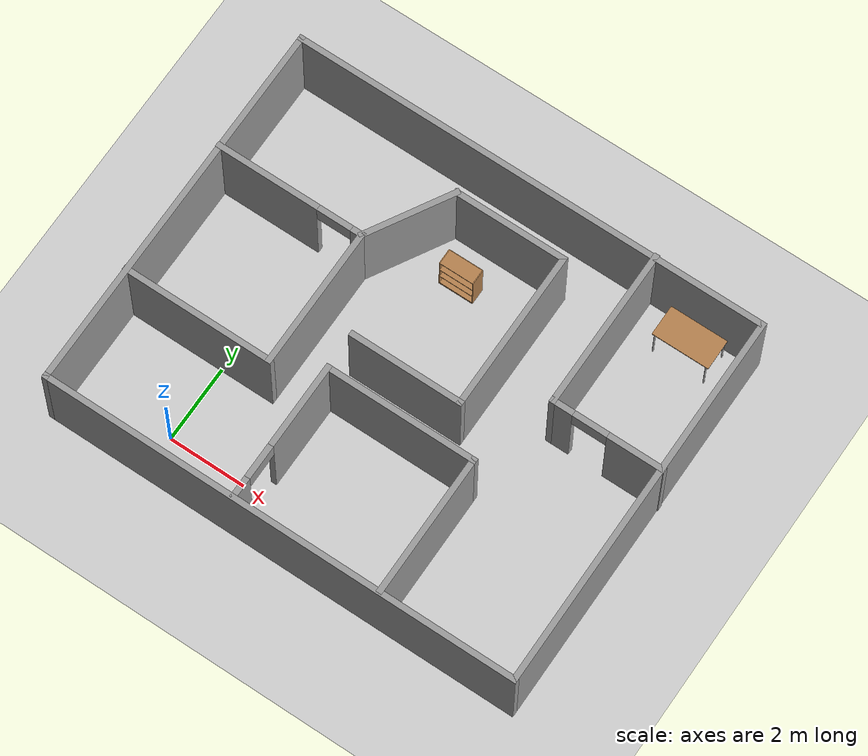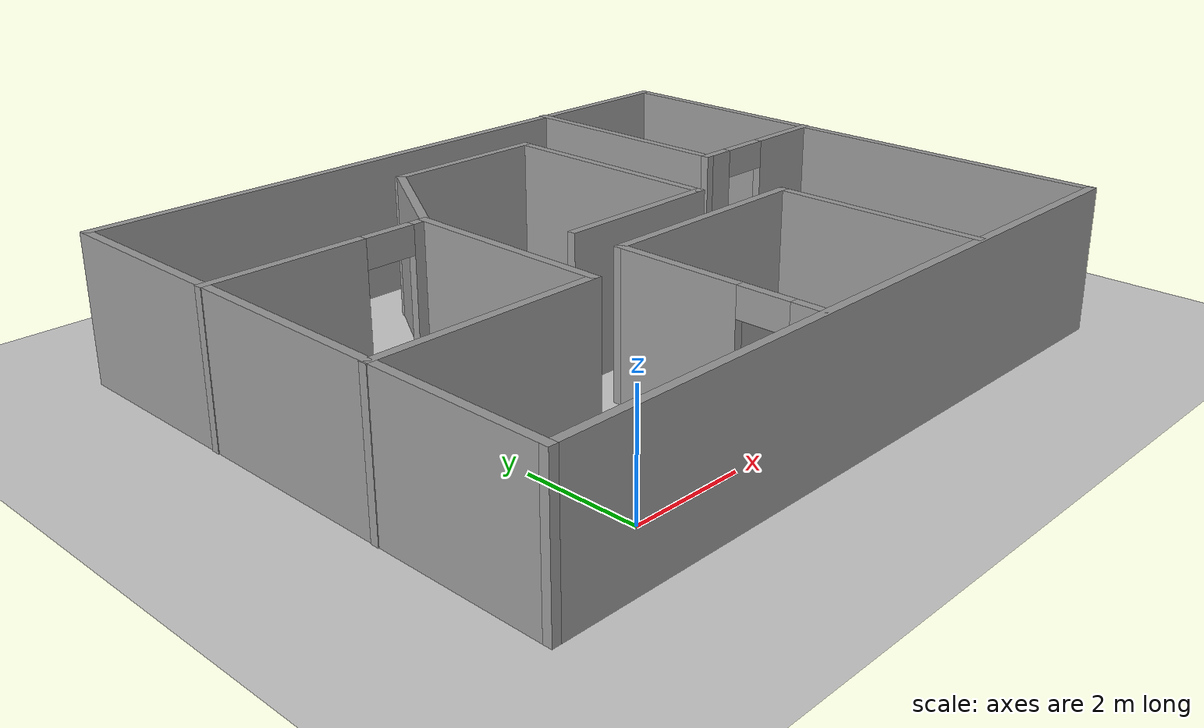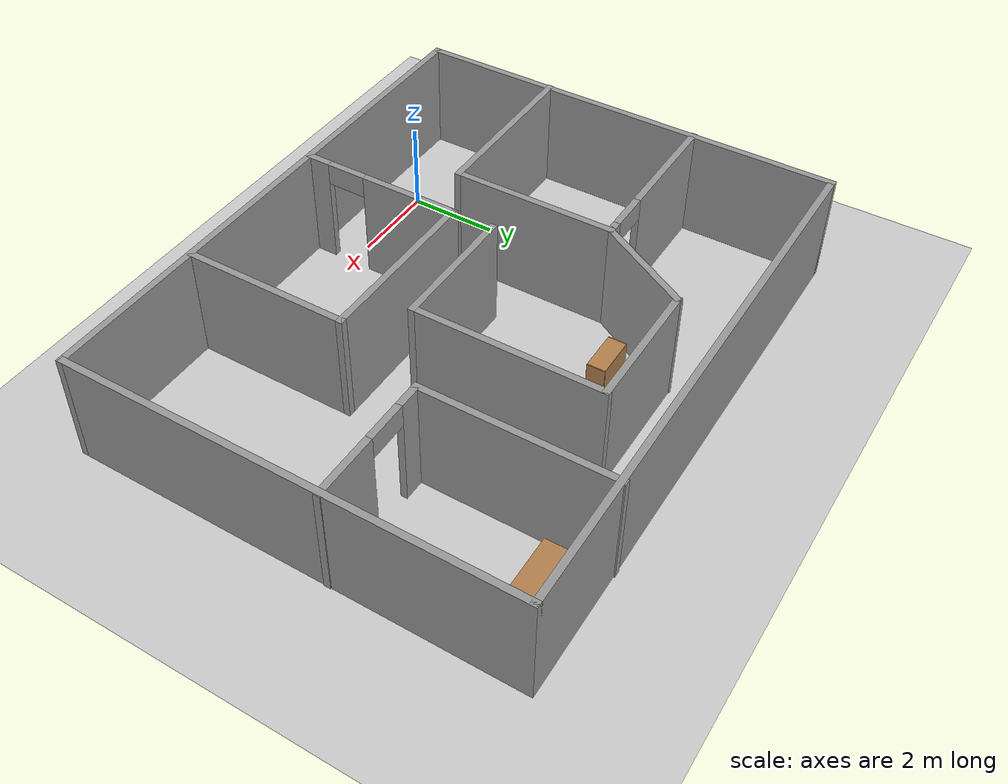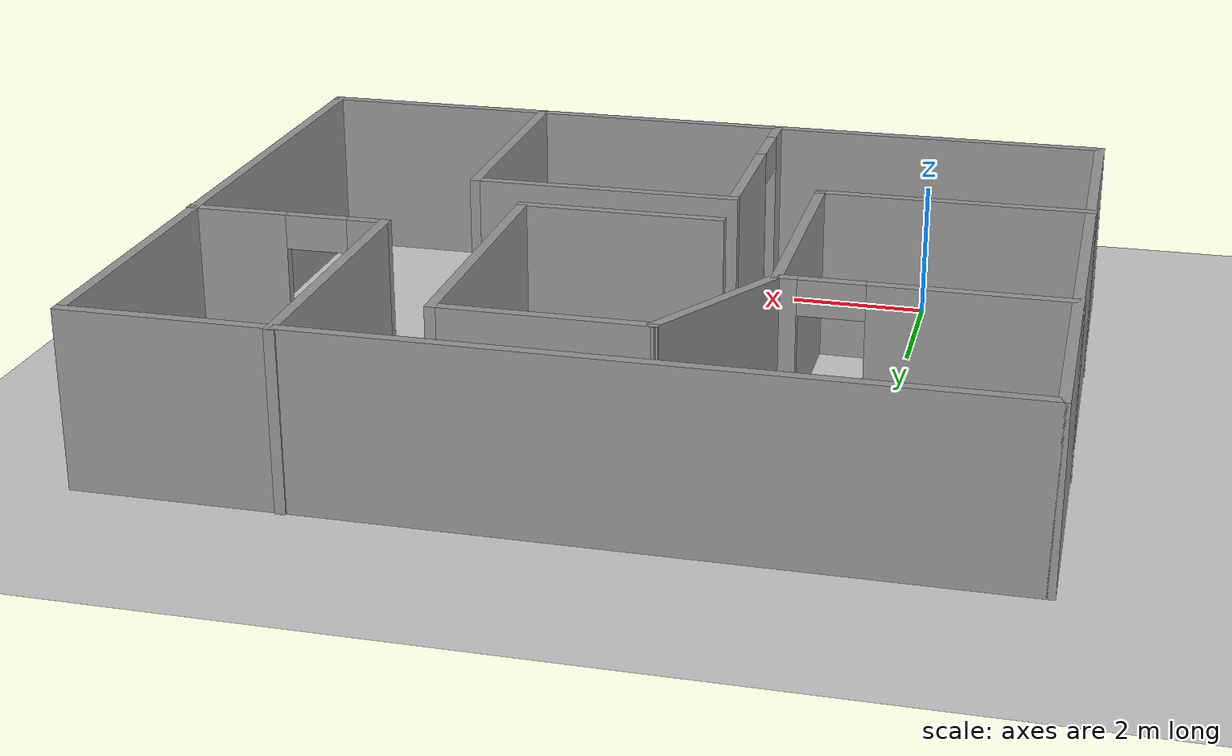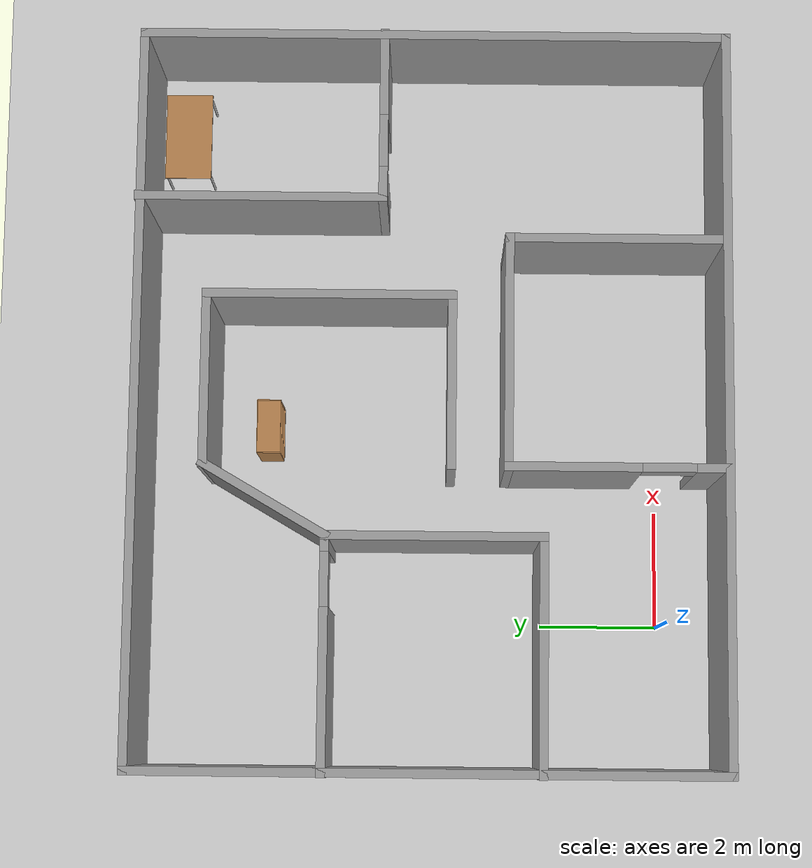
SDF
<sdf version="1.7">
 <world name="default">
  <light name="sun" type="directional">
   <pose>0 0 10 0 -0 0</pose>
   <diffuse>0.8 0.8 0.8 1</diffuse>
   <specular>0.2 0.2 0.2 1</specular>
   <attenuation>
    <range>1000</range>
    <constant>0.9</constant>
    <linear>0.01</linear>
    <quadratic>0.001</quadratic>
   </attenuation>
   <direction>-0.5 0.1 -0.9</direction>
   <spot><inner_angle>0</inner_angle><outer_angle>0</outer_angle><falloff>0</falloff></spot>
  </light>
  <model name="ground_plane">
   <static>1</static>
   <link name="link">
    <collision name="collision">
     <geometry><plane><normal>0 0 1</normal><size>100 100</size></plane></geometry>
     <surface>
      <contact><collide_bitmask>65535</collide_bitmask></contact>
      <friction><ode><mu>100</mu><mu2>50</mu2></ode></friction>
     </surface>
    </collision>
    <visual name="visual">
     <cast_shadows>0</cast_shadows>
     <geometry><plane><normal>0 0 1</normal><size>100 100</size></plane></geometry>
     <material>
      <script><uri>file://media/materials/scripts/gazebo.material</uri><name>Gazebo/Grey</name></script>
     </material>
    </visual>
   </link>
  </model>
  <gravity>0 0 -9.8</gravity>
  <magnetic_field>6e-06 2.3e-05 -4.2e-05</magnetic_field>
  <atmosphere type="adiabatic"/>
  <physics type="ode">
   <max_step_size>0.001</max_step_size>
   <real_time_factor>1</real_time_factor>
   <real_time_update_rate>1000</real_time_update_rate>
  </physics>
  <scene><ambient>0.4 0.4 0.4 1</ambient><background>0.7 0.7 0.7 1</background><shadows>1</shadows></scene>
  <audio><device>default</device></audio>
  <spherical_coordinates>
   <surface_model>EARTH_WGS84</surface_model>
   <latitude_deg>0</latitude_deg>
   <longitude_deg>0</longitude_deg>
   <elevation>0</elevation>
   <heading_deg>0</heading_deg>
  </spherical_coordinates>
  <model name="my_floor3">
   <pose>3.68856 3.92915 0 0 -0 0</pose>
   <link name="Wall_0">
    <collision name="Wall_0_Collision">
     <geometry><box><size>10 0.15 2.5</size></box></geometry>
     <pose>0 0 1.25 0 -0 0</pose>
    </collision>
    <visual name="Wall_0_Visual">
     <pose>0 0 1.25 0 -0 0</pose>
     <geometry><box><size>10 0.15 2.5</size></box></geometry>
     <material>
      <script><uri>file://media/materials/scripts/gazebo.material</uri><name>Gazebo/Grey</name></script>
      <ambient>1 1 1 1</ambient>
     </material>
     <meta><layer>0</layer></meta>
    </visual>
    <pose>-6.17856 -0.01415 0 0 -0 1.5708</pose>
   </link>
   <link name="Wall_1">
    <collision name="Wall_1_Collision">
     <geometry><box><size>12.5 0.15 2.5</size></box></geometry>
     <pose>0 0 1.25 0 -0 0</pose>
    </collision>
    <visual name="Wall_1_Visual">
     <pose>0 0 1.25 0 -0 0</pose>
     <geometry><box><size>12.5 0.15 2.5</size></box></geometry>
     <material>
      <script><uri>file://media/materials/scripts/gazebo.material</uri><name>Gazebo/Grey</name></script>
      <ambient>1 1 1 1</ambient>
     </material>
     <meta><layer>0</layer></meta>
    </visual>
    <pose>-0.00356 4.91085 0 0 -0 0</pose>
   </link>
   <link name="Wall_11">
    <collision name="Wall_11_Collision">
     <geometry><box><size>3.75 0.15 2.5</size></box></geometry>
     <pose>0 0 1.25 0 -0 0</pose>
    </collision>
    <visual name="Wall_11_Visual">
     <pose>0 0 1.25 0 -0 0</pose>
     <geometry><box><size>3.75 0.15 2.5</size></box></geometry>
     <material>
      <script><uri>file://media/materials/scripts/gazebo.material</uri><name>Gazebo/Grey</name></script>
      <ambient>1 1 1 1</ambient>
     </material>
     <meta><layer>0</layer></meta>
    </visual>
    <pose>-2.34146 -0.081381 0 0 -0 -1.5708</pose>
   </link>
   <link name="Wall_12">
    <collision name="Wall_12_Collision">
     <geometry><box><size>4 0.15 2.5</size></box></geometry>
     <pose>0 0 1.25 0 -0 0</pose>
    </collision>
    <visual name="Wall_12_Visual">
     <pose>0 0 1.25 0 -0 0</pose>
     <geometry><box><size>4 0.15 2.5</size></box></geometry>
     <material>
      <script><uri>file://media/materials/scripts/gazebo.material</uri><name>Gazebo/Grey</name></script>
      <ambient>1 1 1 1</ambient>
     </material>
     <meta><layer>0</layer></meta>
    </visual>
    <pose>-4.26646 -1.88138 0 0 -0 3.14159</pose>
   </link>
   <link name="Wall_14">
    <collision name="Wall_14_Collision">
     <geometry><box><size>3.75 0.15 2.5</size></box></geometry>
     <pose>0 0 1.25 0 -0 0</pose>
    </collision>
    <visual name="Wall_14_Visual">
     <pose>0 0 1.25 0 -0 0</pose>
     <geometry><box><size>3.75 0.15 2.5</size></box></geometry>
     <material>
      <script><uri>file://media/materials/scripts/gazebo.material</uri><name>Gazebo/Grey</name></script>
      <ambient>1 1 1 1</ambient>
     </material>
     <meta><layer>0</layer></meta>
    </visual>
    <pose>2.67359 -3.09499 0 0 -0 1.5708</pose>
   </link>
   <link name="Wall_15">
    <collision name="Wall_15_Collision">
     <geometry><box><size>4 0.15 2.5</size></box></geometry>
     <pose>0 0 1.25 0 -0 0</pose>
    </collision>
    <visual name="Wall_15_Visual">
     <pose>0 0 1.25 0 -0 0</pose>
     <geometry><box><size>4 0.15 2.5</size></box></geometry>
     <material>
      <script><uri>file://media/materials/scripts/gazebo.material</uri><name>Gazebo/Grey</name></script>
      <ambient>1 1 1 1</ambient>
     </material>
     <meta><layer>0</layer></meta>
    </visual>
    <pose>0.748586 -1.29499 0 0 -0 3.14159</pose>
   </link>
   <link name="Wall_16">
    <pose>-1.17641 -3.09499 0 0 -0 -1.5708</pose>
    <visual name="Wall_16_Visual_0">
     <pose>-0.737413 0 1.25 0 -0 0</pose>
     <geometry><box><size>2.27517 0.15 2.5</size></box></geometry>
     <material>
      <script><uri>file://media/materials/scripts/gazebo.material</uri><name>Gazebo/Grey</name></script>
      <ambient>1 1 1 1</ambient>
     </material>
     <meta><layer>0</layer></meta>
    </visual>
    <collision name="Wall_16_Collision_0">
     <geometry><box><size>2.27517 0.15 2.5</size></box></geometry>
     <pose>-0.737413 0 1.25 0 -0 0</pose>
    </collision>
    <visual name="Wall_16_Visual_1">
     <pose>1.58759 0 1.25 0 -0 0</pose>
     <geometry><box><size>0.574827 0.15 2.5</size></box></geometry>
     <material>
      <script><uri>file://media/materials/scripts/gazebo.material</uri><name>Gazebo/Grey</name></script>
      <ambient>1 1 1 1</ambient>
     </material>
     <meta><layer>0</layer></meta>
    </visual>
    <collision name="Wall_16_Collision_1">
     <geometry><box><size>0.574827 0.15 2.5</size></box></geometry>
     <pose>1.58759 0 1.25 0 -0 0</pose>
    </collision>
    <visual name="Wall_16_Visual_2">
     <pose>0.850173 0 2.25 0 -0 0</pose>
     <geometry><box><size>0.9 0.15 0.5</size></box></geometry>
     <material>
      <script><uri>file://media/materials/scripts/gazebo.material</uri><name>Gazebo/Grey</name></script>
      <ambient>1 1 1 1</ambient>
     </material>
     <meta><layer>0</layer></meta>
    </visual>
    <collision name="Wall_16_Collision_2">
     <geometry><box><size>0.9 0.15 0.5</size></box></geometry>
     <pose>0.850173 0 2.25 0 -0 0</pose>
    </collision>
   </link>
   <link name="Wall_19">
    <pose>4.76646 0.83915 0 0 -0 3.14159</pose>
    <visual name="Wall_19_Visual_0">
     <pose>-0.755263 0 1.25 0 -0 0</pose>
     <geometry><box><size>1.48947 0.15 2.5</size></box></geometry>
     <material>
      <script><uri>file://media/materials/scripts/gazebo.material</uri><name>Gazebo/Grey</name></script>
      <ambient>1 1 1 1</ambient>
     </material>
     <meta><layer>0</layer></meta>
    </visual>
    <collision name="Wall_19_Collision_0">
     <geometry><box><size>1.48947 0.15 2.5</size></box></geometry>
     <pose>-0.755263 0 1.25 0 -0 0</pose>
    </collision>
    <visual name="Wall_19_Visual_1">
     <pose>1.19474 0 1.25 0 -0 0</pose>
     <geometry><box><size>0.610526 0.15 2.5</size></box></geometry>
     <material>
      <script><uri>file://media/materials/scripts/gazebo.material</uri><name>Gazebo/Grey</name></script>
      <ambient>1 1 1 1</ambient>
     </material>
     <meta><layer>0</layer></meta>
    </visual>
    <collision name="Wall_19_Collision_1">
     <geometry><box><size>0.610526 0.15 2.5</size></box></geometry>
     <pose>1.19474 0 1.25 0 -0 0</pose>
    </collision>
    <visual name="Wall_19_Visual_2">
     <pose>0.439474 0 2.25 0 -0 0</pose>
     <geometry><box><size>0.9 0.15 0.5</size></box></geometry>
     <material>
      <script><uri>file://media/materials/scripts/gazebo.material</uri><name>Gazebo/Grey</name></script>
      <ambient>1 1 1 1</ambient>
     </material>
     <meta><layer>0</layer></meta>
    </visual>
    <collision name="Wall_19_Collision_2">
     <geometry><box><size>0.9 0.15 0.5</size></box></geometry>
     <pose>0.439474 0 2.25 0 -0 0</pose>
    </collision>
   </link>
   <link name="Wall_2">
    <collision name="Wall_2_Collision">
     <geometry><box><size>10 0.15 2.5</size></box></geometry>
     <pose>0 0 1.25 0 -0 0</pose>
    </collision>
    <visual name="Wall_2_Visual">
     <pose>0 0 1.25 0 -0 0</pose>
     <geometry><box><size>10 0.15 2.5</size></box></geometry>
     <material>
      <script><uri>file://media/materials/scripts/gazebo.material</uri><name>Gazebo/Grey</name></script>
      <ambient>1 1 1 1</ambient>
     </material>
     <meta><layer>0</layer></meta>
    </visual>
    <pose>6.17144 -0.01415 0 0 -0 -1.5708</pose>
   </link>
   <link name="Wall_20">
    <collision name="Wall_20_Collision">
     <geometry><box><size>4.25 0.15 2.5</size></box></geometry>
     <pose>0 0 1.25 0 -0 0</pose>
    </collision>
    <visual name="Wall_20_Visual">
     <pose>0 0 1.25 0 -0 0</pose>
     <geometry><box><size>4.25 0.15 2.5</size></box></geometry>
     <material>
      <script><uri>file://media/materials/scripts/gazebo.material</uri><name>Gazebo/Grey</name></script>
      <ambient>1 1 1 1</ambient>
     </material>
     <meta><layer>0</layer></meta>
    </visual>
    <pose>3.34146 2.88915 0 0 -0 1.5708</pose>
   </link>
   <link name="Wall_3">
    <collision name="Wall_3_Collision">
     <geometry><box><size>12.5 0.15 2.5</size></box></geometry>
     <pose>0 0 1.25 0 -0 0</pose>
    </collision>
    <visual name="Wall_3_Visual">
     <pose>0 0 1.25 0 -0 0</pose>
     <geometry><box><size>12.5 0.15 2.5</size></box></geometry>
     <material>
      <script><uri>file://media/materials/scripts/gazebo.material</uri><name>Gazebo/Grey</name></script>
      <ambient>1 1 1 1</ambient>
     </material>
     <meta><layer>0</layer></meta>
    </visual>
    <pose>-0.00356 -4.93915 0 0 -0 3.14159</pose>
   </link>
   <link name="Wall_5">
    <pose>-4.26646 1.71862 0 0 -0 0</pose>
    <visual name="Wall_5_Visual_0">
     <pose>-0.622045 0 1.25 0 -0 0</pose>
     <geometry><box><size>2.75591 0.15 2.5</size></box></geometry>
     <material>
      <script><uri>file://media/materials/scripts/gazebo.material</uri><name>Gazebo/Grey</name></script>
      <ambient>1 1 1 1</ambient>
     </material>
     <meta><layer>0</layer></meta>
    </visual>
    <collision name="Wall_5_Collision_0">
     <geometry><box><size>2.75591 0.15 2.5</size></box></geometry>
     <pose>-0.622045 0 1.25 0 -0 0</pose>
    </collision>
    <visual name="Wall_5_Visual_1">
     <pose>1.82795 0 1.25 0 -0 0</pose>
     <geometry><box><size>0.34409 0.15 2.5</size></box></geometry>
     <material>
      <script><uri>file://media/materials/scripts/gazebo.material</uri><name>Gazebo/Grey</name></script>
      <ambient>1 1 1 1</ambient>
     </material>
     <meta><layer>0</layer></meta>
    </visual>
    <collision name="Wall_5_Collision_1">
     <geometry><box><size>0.34409 0.15 2.5</size></box></geometry>
     <pose>1.82795 0 1.25 0 -0 0</pose>
    </collision>
    <visual name="Wall_5_Visual_2">
     <pose>1.20591 0 2.25 0 -0 0</pose>
     <geometry><box><size>0.9 0.15 0.5</size></box></geometry>
     <material>
      <script><uri>file://media/materials/scripts/gazebo.material</uri><name>Gazebo/Grey</name></script>
      <ambient>1 1 1 1</ambient>
     </material>
     <meta><layer>0</layer></meta>
    </visual>
    <collision name="Wall_5_Collision_2">
     <geometry><box><size>0.9 0.15 0.5</size></box></geometry>
     <pose>1.20591 0 2.25 0 -0 0</pose>
    </collision>
   </link>
   <link name="Wall_6">
    <collision name="Wall_6_Collision">
     <geometry><box><size>2.5 0.15 2.5</size></box></geometry>
     <pose>0 0 1.25 0 -0 0</pose>
    </collision>
    <visual name="Wall_6_Visual">
     <pose>0 0 1.25 0 -0 0</pose>
     <geometry><box><size>2.5 0.15 2.5</size></box></geometry>
     <material>
      <script><uri>file://media/materials/scripts/gazebo.material</uri><name>Gazebo/Grey</name></script>
      <ambient>1 1 1 1</ambient>
     </material>
     <meta><layer>0</layer></meta>
    </visual>
    <pose>-1.75396 2.7362 0 0 -0 1.0472</pose>
   </link>
   <link name="Wall_7">
    <collision name="Wall_7_Collision">
     <geometry><box><size>3 0.15 2.5</size></box></geometry>
     <pose>0 0 1.25 0 -0 0</pose>
    </collision>
    <visual name="Wall_7_Visual">
     <pose>0 0 1.25 0 -0 0</pose>
     <geometry><box><size>3 0.15 2.5</size></box></geometry>
     <material>
      <script><uri>file://media/materials/scripts/gazebo.material</uri><name>Gazebo/Grey</name></script>
      <ambient>1 1 1 1</ambient>
     </material>
     <meta><layer>0</layer></meta>
    </visual>
    <pose>0.258538 3.75378 0 0 -0 0</pose>
   </link>
   <link name="Wall_8">
    <collision name="Wall_8_Collision">
     <geometry><box><size>4.25 0.15 2.5</size></box></geometry>
     <pose>0 0 1.25 0 -0 0</pose>
    </collision>
    <visual name="Wall_8_Visual">
     <pose>0 0 1.25 0 -0 0</pose>
     <geometry><box><size>4.25 0.15 2.5</size></box></geometry>
     <material>
      <script><uri>file://media/materials/scripts/gazebo.material</uri><name>Gazebo/Grey</name></script>
      <ambient>1 1 1 1</ambient>
     </material>
     <meta><layer>0</layer></meta>
    </visual>
    <pose>1.68354 1.70378 0 0 -0 -1.5708</pose>
   </link>
   <link name="Wall_9">
    <collision name="Wall_9_Collision">
     <geometry><box><size>3 0.15 2.5</size></box></geometry>
     <pose>0 0 1.25 0 -0 0</pose>
    </collision>
    <visual name="Wall_9_Visual">
     <pose>0 0 1.25 0 -0 0</pose>
     <geometry><box><size>3 0.15 2.5</size></box></geometry>
     <material>
      <script><uri>file://media/materials/scripts/gazebo.material</uri><name>Gazebo/Grey</name></script>
      <ambient>1 1 1 1</ambient>
     </material>
     <meta><layer>0</layer></meta>
    </visual>
    <pose>0.258538 -0.346221 0 0 -0 3.14159</pose>
   </link>
   <static>1</static>
  </model>
  <model name="bookshelf">
   <static>1</static>
   <link name="link">
    <inertial><mass>1</mass></inertial>
    <collision name="back">
     <pose>0 0.005 0.6 0 -0 0</pose>
     <geometry><box><size>0.9 0.01 1.2</size></box></geometry>
    </collision>
    <visual name="visual1">
     <pose>0 0.005 0.6 0 -0 0</pose>
     <geometry><box><size>0.9 0.01 1.2</size></box></geometry>
     <material>
      <script><uri>file://media/materials/scripts/gazebo.material</uri><name>Gazebo/Wood</name></script>
     </material>
    </visual>
    <collision name="left_side">
     <pose>0.45 -0.195 0.6 0 -0 0</pose>
     <geometry><box><size>0.02 0.4 1.2</size></box></geometry>
    </collision>
    <visual name="visual2">
     <pose>0.45 -0.195 0.6 0 -0 0</pose>
     <geometry><box><size>0.02 0.4 1.2</size></box></geometry>
     <material>
      <script><uri>file://media/materials/scripts/gazebo.material</uri><name>Gazebo/Wood</name></script>
     </material>
    </visual>
    <collision name="right_side">
     <pose>-0.45 -0.195 0.6 0 -0 0</pose>
     <geometry><box><size>0.02 0.4 1.2</size></box></geometry>
    </collision>
    <visual name="visual3">
     <pose>-0.45 -0.195 0.6 0 -0 0</pose>
     <geometry><box><size>0.02 0.4 1.2</size></box></geometry>
     <material>
      <script><uri>file://media/materials/scripts/gazebo.material</uri><name>Gazebo/Wood</name></script>
     </material>
    </visual>
    <collision name="bottom">
     <pose>0 -0.195 0.03 0 -0 0</pose>
     <geometry><box><size>0.88 0.4 0.06</size></box></geometry>
    </collision>
    <visual name="visual4">
     <pose>0 -0.195 0.03 0 -0 0</pose>
     <geometry><box><size>0.88 0.4 0.06</size></box></geometry>
     <material>
      <script><uri>file://media/materials/scripts/gazebo.material</uri><name>Gazebo/Wood</name></script>
     </material>
    </visual>
    <collision name="top">
     <pose>0 -0.195 1.19 0 -0 0</pose>
     <geometry><box><size>0.88 0.4 0.02</size></box></geometry>
    </collision>
    <visual name="visual5">
     <pose>0 -0.195 1.19 0 -0 0</pose>
     <geometry><box><size>0.88 0.4 0.02</size></box></geometry>
     <material>
      <script><uri>file://media/materials/scripts/gazebo.material</uri><name>Gazebo/Wood</name></script>
     </material>
    </visual>
    <collision name="low_shelf">
     <pose>0 -0.195 0.43 0 -0 0</pose>
     <geometry><box><size>0.88 0.4 0.02</size></box></geometry>
    </collision>
    <visual name="visual6">
     <pose>0 -0.195 0.43 0 -0 0</pose>
     <geometry><box><size>0.88 0.4 0.02</size></box></geometry>
     <material>
      <script><uri>file://media/materials/scripts/gazebo.material</uri><name>Gazebo/Wood</name></script>
     </material>
    </visual>
    <collision name="high_shelf">
     <pose>0 -0.195 0.8 0 -0 0</pose>
     <geometry><box><size>0.88 0.4 0.02</size></box></geometry>
    </collision>
    <visual name="visual7">
     <pose>0 -0.195 0.8 0 -0 0</pose>
     <geometry><box><size>0.88 0.4 0.02</size></box></geometry>
     <material>
      <script><uri>file://media/materials/scripts/gazebo.material</uri><name>Gazebo/Wood</name></script>
     </material>
    </visual>
   </link>
   <pose>3.31745 6.89133 0 0 -0 0</pose>
  </model>
  <model name="table">
   <static>1</static>
   <link name="link">
    <collision name="surface">
     <pose>0 0 1 0 -0 0</pose>
     <geometry><box><size>1.5 0.8 0.03</size></box></geometry>
     <surface><friction><ode><mu>0.6</mu><mu2>0.6</mu2></ode></friction></surface>
    </collision>
    <visual name="visual1">
     <pose>0 0 1 0 -0 0</pose>
     <geometry><box><size>1.5 0.8 0.03</size></box></geometry>
     <material>
      <script><uri>file://media/materials/scripts/gazebo.material</uri><name>Gazebo/Wood</name></script>
     </material>
    </visual>
    <collision name="front_left_leg">
     <pose>0.68 0.38 0.5 0 -0 0</pose>
     <geometry><cylinder><radius>0.02</radius><length>1</length></cylinder></geometry>
    </collision>
    <visual name="front_left_leg">
     <pose>0.68 0.38 0.5 0 -0 0</pose>
     <geometry><cylinder><radius>0.02</radius><length>1</length></cylinder></geometry>
     <material>
      <script><uri>file://media/materials/scripts/gazebo.material</uri><name>Gazebo/Grey</name></script>
     </material>
    </visual>
    <collision name="front_right_leg">
     <pose>0.68 -0.38 0.5 0 -0 0</pose>
     <geometry><cylinder><radius>0.02</radius><length>1</length></cylinder></geometry>
    </collision>
    <visual name="front_right_leg">
     <pose>0.68 -0.38 0.5 0 -0 0</pose>
     <geometry><cylinder><radius>0.02</radius><length>1</length></cylinder></geometry>
     <material>
      <script><uri>file://media/materials/scripts/gazebo.material</uri><name>Gazebo/Grey</name></script>
     </material>
    </visual>
    <collision name="back_right_leg">
     <pose>-0.68 -0.38 0.5 0 -0 0</pose>
     <geometry><cylinder><radius>0.02</radius><length>1</length></cylinder></geometry>
    </collision>
    <visual name="back_right_leg">
     <pose>-0.68 -0.38 0.5 0 -0 0</pose>
     <geometry><cylinder><radius>0.02</radius><length>1</length></cylinder></geometry>
     <material>
      <script><uri>file://media/materials/scripts/gazebo.material</uri><name>Gazebo/Grey</name></script>
     </material>
    </visual>
    <collision name="back_left_leg">
     <pose>-0.68 0.38 0.5 0 -0 0</pose>
     <geometry><cylinder><radius>0.02</radius><length>1</length></cylinder></geometry>
    </collision>
    <visual name="back_left_leg">
     <pose>-0.68 0.38 0.5 0 -0 0</pose>
     <geometry><cylinder><radius>0.02</radius><length>1</length></cylinder></geometry>
     <material>
      <script><uri>file://media/materials/scripts/gazebo.material</uri><name>Gazebo/Grey</name></script>
     </material>
    </visual>
   </link>
   <pose>8.45727 8.21632 0 0 -0 0</pose>
  </model>
 </world>
</sdf>
